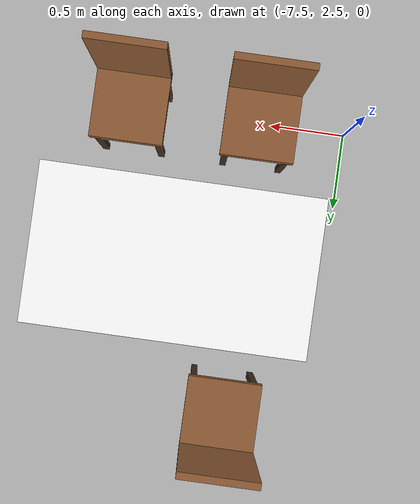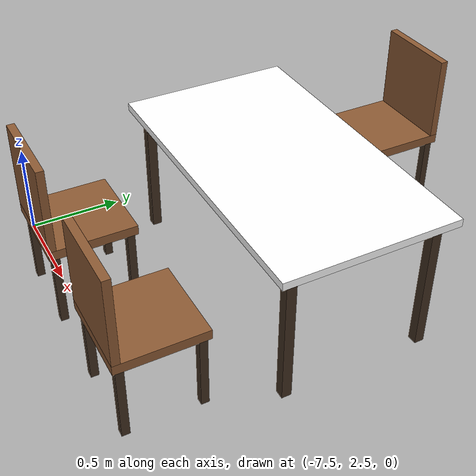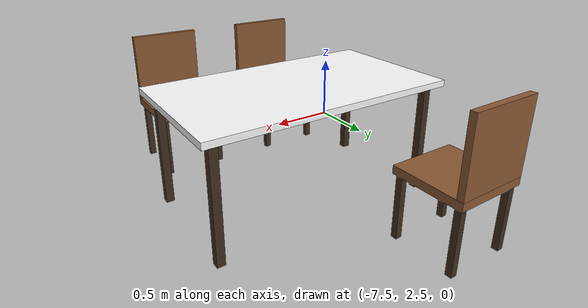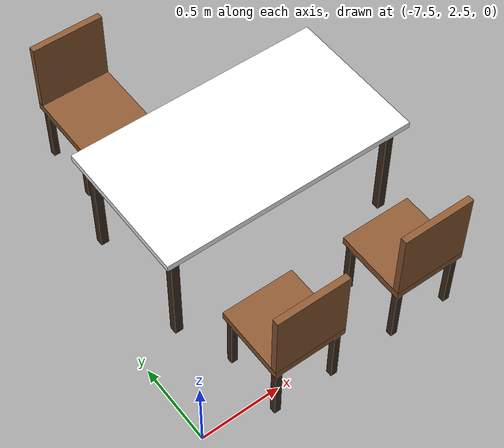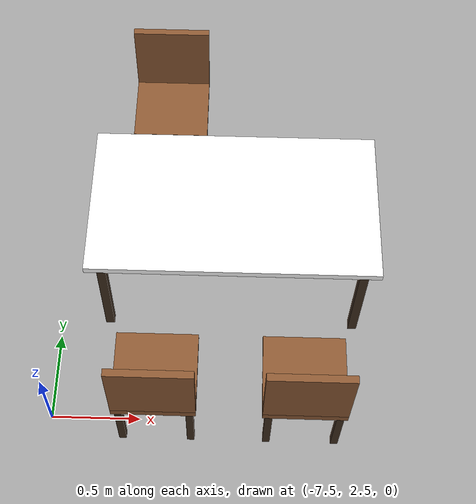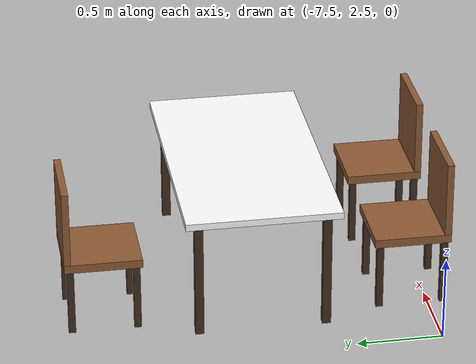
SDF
<sdf version="1.9">
 <world name="indoor_furniture">
  <model name="dining_table">
   <static>true</static>
   <link name="top">
    <pose>-6.500 3.500 0.730 0 0 0.000</pose>
    <collision name="col"><geometry><box><size>1.600 0.900 0.040</size></box></geometry></collision>
    <visual name="vis">
     <geometry><box><size>1.600 0.900 0.040</size></box></geometry>
     <material>
      <diffuse>1 1 1 1</diffuse>
      <specular>0 0 0 1</specular>
      <pbr>
       <metal>
        <albedo_map>model://indoor_house/materials/textures/wood.png</albedo_map>
        <metalness>0</metalness>
        <roughness>1</roughness>
       </metal>
      </pbr>
     </material>
    </visual>
   </link>
   <link name="leg0">
    <pose>-5.780 3.870 0.355 0 0 0.000</pose>
    <collision name="col"><geometry><box><size>0.050 0.050 0.710</size></box></geometry></collision>
    <visual name="vis">
     <geometry><box><size>0.050 0.050 0.710</size></box></geometry>
     <material>
      <ambient>0.25 0.18 0.12 1</ambient>
      <diffuse>0.25 0.18 0.12 1</diffuse>
      <specular>0.1 0.1 0.1 1</specular>
     </material>
    </visual>
   </link>
   <link name="leg1">
    <pose>-7.220 3.870 0.355 0 0 0.000</pose>
    <collision name="col"><geometry><box><size>0.050 0.050 0.710</size></box></geometry></collision>
    <visual name="vis">
     <geometry><box><size>0.050 0.050 0.710</size></box></geometry>
     <material>
      <ambient>0.25 0.18 0.12 1</ambient>
      <diffuse>0.25 0.18 0.12 1</diffuse>
      <specular>0.1 0.1 0.1 1</specular>
     </material>
    </visual>
   </link>
   <link name="leg2">
    <pose>-5.780 3.130 0.355 0 0 0.000</pose>
    <collision name="col"><geometry><box><size>0.050 0.050 0.710</size></box></geometry></collision>
    <visual name="vis">
     <geometry><box><size>0.050 0.050 0.710</size></box></geometry>
     <material>
      <ambient>0.25 0.18 0.12 1</ambient>
      <diffuse>0.25 0.18 0.12 1</diffuse>
      <specular>0.1 0.1 0.1 1</specular>
     </material>
    </visual>
   </link>
   <link name="leg3">
    <pose>-7.220 3.130 0.355 0 0 0.000</pose>
    <collision name="col"><geometry><box><size>0.050 0.050 0.710</size></box></geometry></collision>
    <visual name="vis">
     <geometry><box><size>0.050 0.050 0.710</size></box></geometry>
     <material>
      <ambient>0.25 0.18 0.12 1</ambient>
      <diffuse>0.25 0.18 0.12 1</diffuse>
      <specular>0.1 0.1 0.1 1</specular>
     </material>
    </visual>
   </link>
  </model>
  <model name="chair_0">
   <static>true</static>
   <link name="seat">
    <pose>-6.900 2.600 0.425 0 0 0.000</pose>
    <collision name="col"><geometry><box><size>0.450 0.450 0.050</size></box></geometry></collision>
    <visual name="vis">
     <geometry><box><size>0.450 0.450 0.050</size></box></geometry>
     <material>
      <ambient>0.55 0.35 0.2 1</ambient>
      <diffuse>0.55 0.35 0.2 1</diffuse>
      <specular>0.1 0.1 0.1 1</specular>
     </material>
    </visual>
   </link>
   <link name="leg0">
    <pose>-6.710 2.790 0.200 0 0 0.000</pose>
    <collision name="col"><geometry><box><size>0.040 0.040 0.400</size></box></geometry></collision>
    <visual name="vis">
     <geometry><box><size>0.040 0.040 0.400</size></box></geometry>
     <material>
      <ambient>0.25 0.18 0.12 1</ambient>
      <diffuse>0.25 0.18 0.12 1</diffuse>
      <specular>0.1 0.1 0.1 1</specular>
     </material>
    </visual>
   </link>
   <link name="leg1">
    <pose>-7.090 2.790 0.200 0 0 0.000</pose>
    <collision name="col"><geometry><box><size>0.040 0.040 0.400</size></box></geometry></collision>
    <visual name="vis">
     <geometry><box><size>0.040 0.040 0.400</size></box></geometry>
     <material>
      <ambient>0.25 0.18 0.12 1</ambient>
      <diffuse>0.25 0.18 0.12 1</diffuse>
      <specular>0.1 0.1 0.1 1</specular>
     </material>
    </visual>
   </link>
   <link name="leg2">
    <pose>-6.710 2.410 0.200 0 0 0.000</pose>
    <collision name="col"><geometry><box><size>0.040 0.040 0.400</size></box></geometry></collision>
    <visual name="vis">
     <geometry><box><size>0.040 0.040 0.400</size></box></geometry>
     <material>
      <ambient>0.25 0.18 0.12 1</ambient>
      <diffuse>0.25 0.18 0.12 1</diffuse>
      <specular>0.1 0.1 0.1 1</specular>
     </material>
    </visual>
   </link>
   <link name="leg3">
    <pose>-7.090 2.410 0.200 0 0 0.000</pose>
    <collision name="col"><geometry><box><size>0.040 0.040 0.400</size></box></geometry></collision>
    <visual name="vis">
     <geometry><box><size>0.040 0.040 0.400</size></box></geometry>
     <material>
      <ambient>0.25 0.18 0.12 1</ambient>
      <diffuse>0.25 0.18 0.12 1</diffuse>
      <specular>0.1 0.1 0.1 1</specular>
     </material>
    </visual>
   </link>
   <link name="back">
    <pose>-6.900 2.395 0.675 0 0 0.000</pose>
    <collision name="col"><geometry><box><size>0.450 0.040 0.450</size></box></geometry></collision>
    <visual name="vis">
     <geometry><box><size>0.450 0.040 0.450</size></box></geometry>
     <material>
      <ambient>0.55 0.35 0.2 1</ambient>
      <diffuse>0.55 0.35 0.2 1</diffuse>
      <specular>0.1 0.1 0.1 1</specular>
     </material>
    </visual>
   </link>
  </model>
  <model name="chair_1">
   <static>true</static>
   <link name="seat">
    <pose>-6.100 2.600 0.425 0 0 0.000</pose>
    <collision name="col"><geometry><box><size>0.450 0.450 0.050</size></box></geometry></collision>
    <visual name="vis">
     <geometry><box><size>0.450 0.450 0.050</size></box></geometry>
     <material>
      <ambient>0.55 0.35 0.2 1</ambient>
      <diffuse>0.55 0.35 0.2 1</diffuse>
      <specular>0.1 0.1 0.1 1</specular>
     </material>
    </visual>
   </link>
   <link name="leg0">
    <pose>-5.910 2.790 0.200 0 0 0.000</pose>
    <collision name="col"><geometry><box><size>0.040 0.040 0.400</size></box></geometry></collision>
    <visual name="vis">
     <geometry><box><size>0.040 0.040 0.400</size></box></geometry>
     <material>
      <ambient>0.25 0.18 0.12 1</ambient>
      <diffuse>0.25 0.18 0.12 1</diffuse>
      <specular>0.1 0.1 0.1 1</specular>
     </material>
    </visual>
   </link>
   <link name="leg1">
    <pose>-6.290 2.790 0.200 0 0 0.000</pose>
    <collision name="col"><geometry><box><size>0.040 0.040 0.400</size></box></geometry></collision>
    <visual name="vis">
     <geometry><box><size>0.040 0.040 0.400</size></box></geometry>
     <material>
      <ambient>0.25 0.18 0.12 1</ambient>
      <diffuse>0.25 0.18 0.12 1</diffuse>
      <specular>0.1 0.1 0.1 1</specular>
     </material>
    </visual>
   </link>
   <link name="leg2">
    <pose>-5.910 2.410 0.200 0 0 0.000</pose>
    <collision name="col"><geometry><box><size>0.040 0.040 0.400</size></box></geometry></collision>
    <visual name="vis">
     <geometry><box><size>0.040 0.040 0.400</size></box></geometry>
     <material>
      <ambient>0.25 0.18 0.12 1</ambient>
      <diffuse>0.25 0.18 0.12 1</diffuse>
      <specular>0.1 0.1 0.1 1</specular>
     </material>
    </visual>
   </link>
   <link name="leg3">
    <pose>-6.290 2.410 0.200 0 0 0.000</pose>
    <collision name="col"><geometry><box><size>0.040 0.040 0.400</size></box></geometry></collision>
    <visual name="vis">
     <geometry><box><size>0.040 0.040 0.400</size></box></geometry>
     <material>
      <ambient>0.25 0.18 0.12 1</ambient>
      <diffuse>0.25 0.18 0.12 1</diffuse>
      <specular>0.1 0.1 0.1 1</specular>
     </material>
    </visual>
   </link>
   <link name="back">
    <pose>-6.100 2.395 0.675 0 0 0.000</pose>
    <collision name="col"><geometry><box><size>0.450 0.040 0.450</size></box></geometry></collision>
    <visual name="vis">
     <geometry><box><size>0.450 0.040 0.450</size></box></geometry>
     <material>
      <ambient>0.55 0.35 0.2 1</ambient>
      <diffuse>0.55 0.35 0.2 1</diffuse>
      <specular>0.1 0.1 0.1 1</specular>
     </material>
    </visual>
   </link>
  </model>
  <model name="chair_2">
   <static>true</static>
   <link name="seat">
    <pose>-6.900 4.400 0.425 0 0 0.000</pose>
    <collision name="col"><geometry><box><size>0.450 0.450 0.050</size></box></geometry></collision>
    <visual name="vis">
     <geometry><box><size>0.450 0.450 0.050</size></box></geometry>
     <material>
      <ambient>0.55 0.35 0.2 1</ambient>
      <diffuse>0.55 0.35 0.2 1</diffuse>
      <specular>0.1 0.1 0.1 1</specular>
     </material>
    </visual>
   </link>
   <link name="leg0">
    <pose>-6.710 4.590 0.200 0 0 0.000</pose>
    <collision name="col"><geometry><box><size>0.040 0.040 0.400</size></box></geometry></collision>
    <visual name="vis">
     <geometry><box><size>0.040 0.040 0.400</size></box></geometry>
     <material>
      <ambient>0.25 0.18 0.12 1</ambient>
      <diffuse>0.25 0.18 0.12 1</diffuse>
      <specular>0.1 0.1 0.1 1</specular>
     </material>
    </visual>
   </link>
   <link name="leg1">
    <pose>-7.090 4.590 0.200 0 0 0.000</pose>
    <collision name="col"><geometry><box><size>0.040 0.040 0.400</size></box></geometry></collision>
    <visual name="vis">
     <geometry><box><size>0.040 0.040 0.400</size></box></geometry>
     <material>
      <ambient>0.25 0.18 0.12 1</ambient>
      <diffuse>0.25 0.18 0.12 1</diffuse>
      <specular>0.1 0.1 0.1 1</specular>
     </material>
    </visual>
   </link>
   <link name="leg2">
    <pose>-6.710 4.210 0.200 0 0 0.000</pose>
    <collision name="col"><geometry><box><size>0.040 0.040 0.400</size></box></geometry></collision>
    <visual name="vis">
     <geometry><box><size>0.040 0.040 0.400</size></box></geometry>
     <material>
      <ambient>0.25 0.18 0.12 1</ambient>
      <diffuse>0.25 0.18 0.12 1</diffuse>
      <specular>0.1 0.1 0.1 1</specular>
     </material>
    </visual>
   </link>
   <link name="leg3">
    <pose>-7.090 4.210 0.200 0 0 0.000</pose>
    <collision name="col"><geometry><box><size>0.040 0.040 0.400</size></box></geometry></collision>
    <visual name="vis">
     <geometry><box><size>0.040 0.040 0.400</size></box></geometry>
     <material>
      <ambient>0.25 0.18 0.12 1</ambient>
      <diffuse>0.25 0.18 0.12 1</diffuse>
      <specular>0.1 0.1 0.1 1</specular>
     </material>
    </visual>
   </link>
   <link name="back">
    <pose>-6.900 4.605 0.675 0 0 0.000</pose>
    <collision name="col"><geometry><box><size>0.450 0.040 0.450</size></box></geometry></collision>
    <visual name="vis">
     <geometry><box><size>0.450 0.040 0.450</size></box></geometry>
     <material>
      <ambient>0.55 0.35 0.2 1</ambient>
      <diffuse>0.55 0.35 0.2 1</diffuse>
      <specular>0.1 0.1 0.1 1</specular>
     </material>
    </visual>
   </link>
  </model>
 </world>
</sdf>
